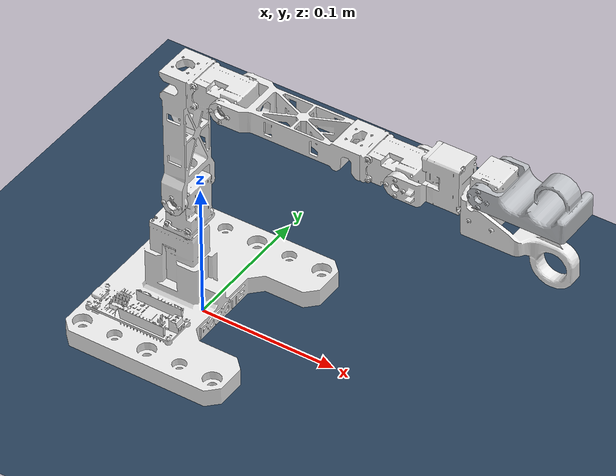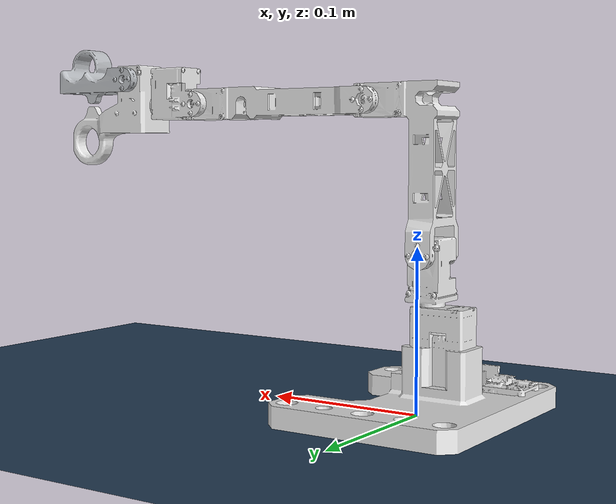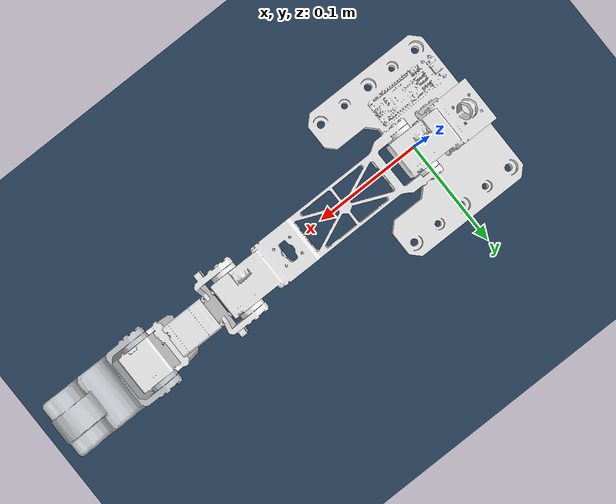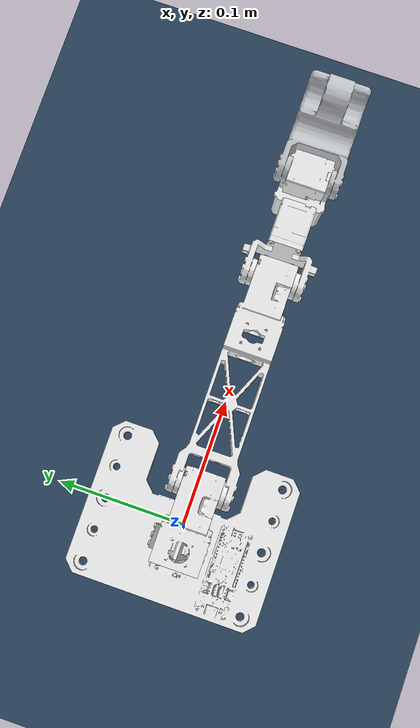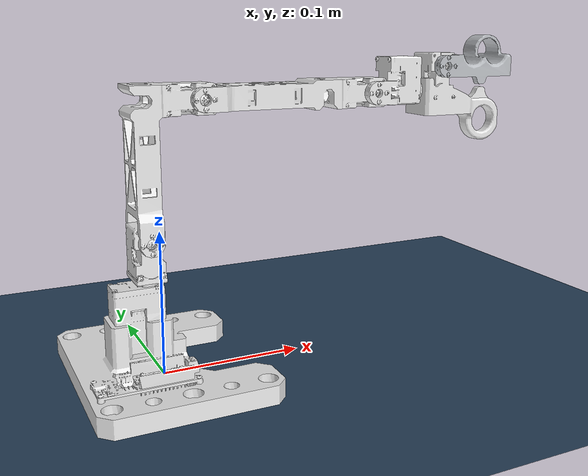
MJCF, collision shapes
<mujoco model="omx leader scene">
  <include file="omx_l.xml"/>

  <statistic center="0.3 0 0.4" extent="1"/>

  <visual>
    <headlight diffuse="0.6 0.6 0.6" ambient="0.3 0.3 0.3" specular="0 0 0"/>
    <rgba haze="0.15 0.25 0.35 1"/>
    <global azimuth="120" elevation="-20"/>
  </visual>

  <asset>
    <texture type="skybox" builtin="gradient" rgb1="0.3 0.5 0.7" rgb2="0 0 0" width="512" height="3072"/>
    <texture type="2d" name="groundplane" builtin="checker" mark="edge" rgb1="0.2 0.3 0.4" rgb2="0.1 0.2 0.3"
      markrgb="0.8 0.8 0.8" width="300" height="300"/>
    <material name="groundplane" texture="groundplane" texuniform="true" texrepeat="5 5" reflectance="0.2"/>
  </asset>

  <worldbody>
    <light pos="0 0 1.5" dir="0 0 -1" directional="true"/>
    <geom name="floor" size="0 0 0.05" type="plane" material="groundplane"/>
  </worldbody>
</mujoco>

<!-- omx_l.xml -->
<mujoco model="omx_l">
  <compiler angle="radian" meshdir="../../"/>
  <!-- Passive leader model generated from omx_l_arm.urdf.xacro. No actuator/controller tuning is implied. -->
  <asset>
    <mesh name="link0_black_electronics" content_type="model/obj" file="meshes/omx_l/visual/link0_black_electronics.obj"/>
    <mesh name="link0_black_fasteners" content_type="model/obj" file="meshes/omx_l/visual/link0_black_fasteners.obj"/>
    <mesh name="link0_blue_pcb" content_type="model/obj" file="meshes/omx_l/visual/link0_blue_pcb.obj"/>
    <mesh name="link0_ceramic" content_type="model/obj" file="meshes/omx_l/visual/link0_ceramic.obj"/>
    <mesh name="link0_gold_contacts" content_type="model/obj" file="meshes/omx_l/visual/link0_gold_contacts.obj"/>
    <mesh name="link0_green_terminal" content_type="model/obj" file="meshes/omx_l/visual/link0_green_terminal.obj"/>
    <mesh name="link0_ivory_connectors" content_type="model/obj" file="meshes/omx_l/visual/link0_ivory_connectors.obj"/>
    <mesh name="link0_motor_housing" content_type="model/obj" file="meshes/omx_l/visual/link0_motor_housing.obj"/>
    <mesh name="link0_nickel_tin" content_type="model/obj" file="meshes/omx_l/visual/link0_nickel_tin.obj"/>
    <mesh name="link0_openrb_bottom" content_type="model/obj" file="meshes/omx_l/visual/link0_openrb_bottom.obj"/>
    <mesh name="link0_openrb_top" content_type="model/obj" file="meshes/omx_l/visual/link0_openrb_top.obj"/>
    <mesh name="link0_printed_charcoal" content_type="model/obj" file="meshes/omx_l/visual/link0_printed_charcoal.obj"/>
    <mesh name="link0_steel_hardware" content_type="model/obj" file="meshes/omx_l/visual/link0_steel_hardware.obj"/>
    <mesh name="link0_unpowered_led" content_type="model/obj" file="meshes/omx_l/visual/link0_unpowered_led.obj"/>
    <mesh name="link0_white_led_diffuser" content_type="model/obj" file="meshes/omx_l/visual/link0_white_led_diffuser.obj"/>
    <mesh name="leader_01_base_roll" content_type="model/stl" file="meshes/omx_l/leader_01_base_roll.stl" scale="0.001 0.001 0.001"/>
    <mesh name="link1_black_electronics" content_type="model/obj" file="meshes/omx_l/visual/link1_black_electronics.obj"/>
    <mesh name="link1_black_fasteners" content_type="model/obj" file="meshes/omx_l/visual/link1_black_fasteners.obj"/>
    <mesh name="link1_motor_housing" content_type="model/obj" file="meshes/omx_l/visual/link1_motor_housing.obj"/>
    <mesh name="link1_printed_charcoal" content_type="model/obj" file="meshes/omx_l/visual/link1_printed_charcoal.obj"/>
    <mesh name="link1_steel_hardware" content_type="model/obj" file="meshes/omx_l/visual/link1_steel_hardware.obj"/>
    <mesh name="link1_white_led_diffuser" content_type="model/obj" file="meshes/omx_l/visual/link1_white_led_diffuser.obj"/>
    <mesh name="leader_02_base_tilt_revised" content_type="model/stl" file="meshes/omx_l/leader_02_base_tilt_revised.stl" scale="0.001 0.001 0.001"/>
    <mesh name="link2_black_electronics" content_type="model/obj" file="meshes/omx_l/visual/link2_black_electronics.obj"/>
    <mesh name="link2_black_fasteners" content_type="model/obj" file="meshes/omx_l/visual/link2_black_fasteners.obj"/>
    <mesh name="link2_motor_housing" content_type="model/obj" file="meshes/omx_l/visual/link2_motor_housing.obj"/>
    <mesh name="link2_printed_charcoal" content_type="model/obj" file="meshes/omx_l/visual/link2_printed_charcoal.obj"/>
    <mesh name="link2_steel_hardware" content_type="model/obj" file="meshes/omx_l/visual/link2_steel_hardware.obj"/>
    <mesh name="link2_white_led_diffuser" content_type="model/obj" file="meshes/omx_l/visual/link2_white_led_diffuser.obj"/>
    <mesh name="leader_03_middle_vertical" content_type="model/stl" file="meshes/omx_l/leader_03_middle_vertical.stl" scale="0.001 0.001 0.001"/>
    <mesh name="link3_black_electronics" content_type="model/obj" file="meshes/omx_l/visual/link3_black_electronics.obj"/>
    <mesh name="link3_black_fasteners" content_type="model/obj" file="meshes/omx_l/visual/link3_black_fasteners.obj"/>
    <mesh name="link3_motor_housing" content_type="model/obj" file="meshes/omx_l/visual/link3_motor_housing.obj"/>
    <mesh name="link3_printed_charcoal" content_type="model/obj" file="meshes/omx_l/visual/link3_printed_charcoal.obj"/>
    <mesh name="link3_steel_hardware" content_type="model/obj" file="meshes/omx_l/visual/link3_steel_hardware.obj"/>
    <mesh name="link3_white_led_diffuser" content_type="model/obj" file="meshes/omx_l/visual/link3_white_led_diffuser.obj"/>
    <mesh name="leader_04_middle_horizontal" content_type="model/stl" file="meshes/omx_l/leader_04_middle_horizontal.stl" scale="0.001 0.001 0.001"/>
    <mesh name="link4_black_electronics" content_type="model/obj" file="meshes/omx_l/visual/link4_black_electronics.obj"/>
    <mesh name="link4_black_fasteners" content_type="model/obj" file="meshes/omx_l/visual/link4_black_fasteners.obj"/>
    <mesh name="link4_motor_housing" content_type="model/obj" file="meshes/omx_l/visual/link4_motor_housing.obj"/>
    <mesh name="link4_printed_charcoal" content_type="model/obj" file="meshes/omx_l/visual/link4_printed_charcoal.obj"/>
    <mesh name="link4_steel_hardware" content_type="model/obj" file="meshes/omx_l/visual/link4_steel_hardware.obj"/>
    <mesh name="link4_white_led_diffuser" content_type="model/obj" file="meshes/omx_l/visual/link4_white_led_diffuser.obj"/>
    <mesh name="leader_05_tip_roll" content_type="model/stl" file="meshes/omx_l/leader_05_tip_roll.stl" scale="0.001 0.001 0.001"/>
    <mesh name="link5_black_electronics" content_type="model/obj" file="meshes/omx_l/visual/link5_black_electronics.obj"/>
    <mesh name="link5_black_fasteners" content_type="model/obj" file="meshes/omx_l/visual/link5_black_fasteners.obj"/>
    <mesh name="link5_motor_housing" content_type="model/obj" file="meshes/omx_l/visual/link5_motor_housing.obj"/>
    <mesh name="link5_printed_charcoal" content_type="model/obj" file="meshes/omx_l/visual/link5_printed_charcoal.obj"/>
    <mesh name="link5_steel_hardware" content_type="model/obj" file="meshes/omx_l/visual/link5_steel_hardware.obj"/>
    <mesh name="link5_white_led_diffuser" content_type="model/obj" file="meshes/omx_l/visual/link5_white_led_diffuser.obj"/>
    <mesh name="leader_06_tip_pan_revised" content_type="model/stl" file="meshes/omx_l/leader_06_tip_pan_revised.stl" scale="0.001 0.001 0.001"/>
    <mesh name="link6_black_fasteners" content_type="model/obj" file="meshes/omx_l/visual/link6_black_fasteners.obj"/>
    <mesh name="link6_motor_housing" content_type="model/obj" file="meshes/omx_l/visual/link6_motor_housing.obj"/>
    <mesh name="link6_printed_charcoal" content_type="model/obj" file="meshes/omx_l/visual/link6_printed_charcoal.obj"/>
    <mesh name="link6_steel_hardware" content_type="model/obj" file="meshes/omx_l/visual/link6_steel_hardware.obj"/>
    <mesh name="leader_07_tip_grip" content_type="model/stl" file="meshes/omx_l/leader_07_tip_grip.stl" scale="0.001 0.001 0.001"/>
    <material name="omx_printed_charcoal" rgba="0.259833 0.269015 0.277847 1.000000" specular="0.2500" shininess="0.2280"/>
    <material name="omx_ceramic" rgba="0.634878 0.538065 0.411645 1.000000" specular="0.2500" shininess="0.3240"/>
    <material name="omx_black_electronics" rgba="0.110702 0.131804 0.150005 1.000000" specular="0.2500" shininess="0.3480"/>
    <material name="omx_nickel_tin" rgba="0.749388 0.766765 0.790731 1.000000" specular="0.7000" shininess="0.4500"/>
    <material name="omx_gold_contacts" rgba="0.786014 0.641088 0.352474 1.000000" specular="0.7000" shininess="0.4560"/>
    <material name="omx_ivory_connectors" rgba="0.886408 0.896443 0.870034 1.000000" specular="0.2500" shininess="0.3720"/>
    <material name="omx_unpowered_led" rgba="0.820532 0.838187 0.766765 1.000000" specular="0.2500" shininess="0.4500"/>
    <material name="omx_green_terminal" rgba="0.229735 0.575048 0.383458 1.000000" specular="0.2500" shininess="0.3600"/>
    <texture name="omx_openrb_top" type="2d" file="../../meshes/omx_l/visual/textures/openrb_top.png"/>
    <material name="omx_openrb_top" rgba="1.000000 1.000000 1.000000 1.000000" specular="0.7000" shininess="0.0000" texture="omx_openrb_top"/>
    <texture name="omx_openrb_bottom" type="2d" file="../../meshes/omx_l/visual/textures/openrb_bottom.png"/>
    <material name="omx_openrb_bottom" rgba="1.000000 1.000000 1.000000 1.000000" specular="0.7000" shininess="0.0000" texture="omx_openrb_bottom"/>
    <material name="omx_blue_pcb" rgba="0.084945 0.302554 0.484529 1.000000" specular="0.2725" shininess="0.4140"/>
    <material name="omx_steel_hardware" rgba="0.736647 0.749388 0.766765 1.000000" specular="0.7000" shininess="0.4320"/>
    <material name="omx_motor_housing" rgba="0.166186 0.166186 0.194353 1.000000" specular="0.2500" shininess="0.4080"/>
    <material name="omx_white_led_diffuser" rgba="0.916080 0.916080 0.916080 1.000000" specular="0.2500" shininess="0.3000"/>
    <material name="omx_black_fasteners" rgba="0.131804 0.150005 0.166186 1.000000" specular="0.6100" shininess="0.4080"/>
  </asset>
  <worldbody>
    <body name="link0">
      <inertial pos="-0.0123863 -0.00544724 0.0174451" quat="0.546251 0.516036 -0.47646 0.456402" mass="0.145108" diaginertia="0.000321438 0.000262113 0.00014746"/>
      <geom name="link0_black_electronics" quat="1 0 0 0" type="mesh" contype="0" conaffinity="0" group="2" density="0" mesh="link0_black_electronics" material="omx_black_electronics"/>
      <geom name="link0_black_fasteners" pos="0 0 0" quat="1 0 0 0" type="mesh" contype="0" conaffinity="0" group="2" density="0" mesh="link0_black_fasteners" material="omx_black_fasteners"/>
      <geom name="link0_blue_pcb" pos="0 0 0" quat="1 0 0 0" type="mesh" contype="0" conaffinity="0" group="2" density="0" mesh="link0_blue_pcb" material="omx_blue_pcb"/>
      <geom name="link0_ceramic" pos="0 0 0" quat="1 0 0 0" type="mesh" contype="0" conaffinity="0" group="2" density="0" mesh="link0_ceramic" material="omx_ceramic"/>
      <geom name="link0_gold_contacts" pos="0 0 0" quat="1 0 0 0" type="mesh" contype="0" conaffinity="0" group="2" density="0" mesh="link0_gold_contacts" material="omx_gold_contacts"/>
      <geom name="link0_green_terminal" type="mesh" contype="0" conaffinity="0" group="2" density="0" mesh="link0_green_terminal" material="omx_green_terminal"/>
      <geom name="link0_ivory_connectors" quat="1 0 0 0" type="mesh" contype="0" conaffinity="0" group="2" density="0" mesh="link0_ivory_connectors" material="omx_ivory_connectors"/>
      <geom name="link0_motor_housing" pos="0 0 0" quat="1 0 0 0" type="mesh" contype="0" conaffinity="0" group="2" density="0" mesh="link0_motor_housing" material="omx_motor_housing"/>
      <geom name="link0_nickel_tin" pos="0 0 0" quat="1 0 0 0" type="mesh" contype="0" conaffinity="0" group="2" density="0" mesh="link0_nickel_tin" material="omx_nickel_tin"/>
      <geom name="link0_openrb_bottom" pos="0 0 0" quat="1 0 0 0" type="mesh" contype="0" conaffinity="0" group="2" density="0" mesh="link0_openrb_bottom" material="omx_openrb_bottom"/>
      <geom name="link0_openrb_top" pos="0 0 0" quat="1 0 0 0" type="mesh" contype="0" conaffinity="0" group="2" density="0" mesh="link0_openrb_top" material="omx_openrb_top"/>
      <geom name="link0_printed_charcoal" quat="1 0 0 0" type="mesh" contype="0" conaffinity="0" group="2" density="0" mesh="link0_printed_charcoal" material="omx_printed_charcoal"/>
      <geom name="link0_steel_hardware" quat="1 0 0 0" type="mesh" contype="0" conaffinity="0" group="2" density="0" mesh="link0_steel_hardware" material="omx_steel_hardware"/>
      <geom name="link0_unpowered_led" pos="0 0 0" quat="1 0 0 0" type="mesh" contype="0" conaffinity="0" group="2" density="0" mesh="link0_unpowered_led" material="omx_unpowered_led"/>
      <geom name="link0_white_led_diffuser" quat="1 0 0 0" type="mesh" contype="0" conaffinity="0" group="2" density="0" mesh="link0_white_led_diffuser" material="omx_white_led_diffuser"/>
      <geom name="link0_collision" quat="1 0 0 0" type="mesh" rgba="0.91608 0.91608 0.91608 1" mesh="leader_01_base_roll" group="3"/>
      <body name="link1" pos="-0.0095 0 0.0545">
        <inertial pos="2.83504e-05 0.000275113 0.0312809" quat="0.999997 -0.00216306 -0.000542784 -0.000164833" mass="0.025271" diaginertia="4.40774e-06 4.21813e-06 1.868e-06"/>
        <joint name="joint1" range="-6.28319 6.28319" actuatorfrcrange="-1000 1000" damping="0.05"/>
        <geom name="link1_black_electronics" quat="1 0 0 0" type="mesh" contype="0" conaffinity="0" group="2" density="0" mesh="link1_black_electronics" material="omx_black_electronics"/>
        <geom name="link1_black_fasteners" type="mesh" contype="0" conaffinity="0" group="2" density="0" mesh="link1_black_fasteners" material="omx_black_fasteners"/>
        <geom name="link1_motor_housing" type="mesh" contype="0" conaffinity="0" group="2" density="0" mesh="link1_motor_housing" material="omx_motor_housing"/>
        <geom name="link1_printed_charcoal" quat="1 0 0 0" type="mesh" contype="0" conaffinity="0" group="2" density="0" mesh="link1_printed_charcoal" material="omx_printed_charcoal"/>
        <geom name="link1_steel_hardware" quat="1 0 0 0" type="mesh" contype="0" conaffinity="0" group="2" density="0" mesh="link1_steel_hardware" material="omx_steel_hardware"/>
        <geom name="link1_white_led_diffuser" pos="0 0 0" quat="1 0 0 0" type="mesh" contype="0" conaffinity="0" group="2" density="0" mesh="link1_white_led_diffuser" material="omx_white_led_diffuser"/>
        <geom name="link1_collision" type="mesh" rgba="0.91608 0.91608 0.91608 1" mesh="leader_02_base_tilt_revised" group="3"/>
        <body name="link2" pos="0 0 0.042">
          <inertial pos="0.0142492 0.000172411 0.0687606" quat="0.693296 0.108195 0.107569 0.704318" mass="0.0477062" diaginertia="6.58166e-05 6.2121e-05 1.19626e-05"/>
          <joint name="joint2" range="-6.28319 6.28319" actuatorfrcrange="-1000 1000" damping="0.1" axis="0 1 0"/>
          <geom name="link2_black_electronics" pos="0 0 0" quat="1 0 0 0" type="mesh" contype="0" conaffinity="0" group="2" density="0" mesh="link2_black_electronics" material="omx_black_electronics"/>
          <geom name="link2_black_fasteners" quat="1 0 0 0" type="mesh" contype="0" conaffinity="0" group="2" density="0" mesh="link2_black_fasteners" material="omx_black_fasteners"/>
          <geom name="link2_motor_housing" pos="0 0 0" quat="1 0 0 0" type="mesh" contype="0" conaffinity="0" group="2" density="0" mesh="link2_motor_housing" material="omx_motor_housing"/>
          <geom name="link2_printed_charcoal" type="mesh" contype="0" conaffinity="0" group="2" density="0" mesh="link2_printed_charcoal" material="omx_printed_charcoal"/>
          <geom name="link2_steel_hardware" quat="1 0 0 0" type="mesh" contype="0" conaffinity="0" group="2" density="0" mesh="link2_steel_hardware" material="omx_steel_hardware"/>
          <geom name="link2_white_led_diffuser" type="mesh" contype="0" conaffinity="0" group="2" density="0" mesh="link2_white_led_diffuser" material="omx_white_led_diffuser"/>
          <geom name="link2_collision" pos="0 0 0" quat="1 0 0 0" type="mesh" rgba="0.91608 0.91608 0.91608 1" mesh="leader_03_middle_vertical" group="3"/>
          <body name="link3" pos="0.0375 0 0.09">
            <inertial pos="0.0828274 0.000172415 0.000182392" quat="-0.000316965 0.706928 0.000801832 0.707285" mass="0.0477062" diaginertia="9.72316e-05 9.4567e-05 5.6039e-06"/>
            <joint name="joint3" range="-6.28319 6.28319" actuatorfrcrange="-1000 1000" damping="0.1" axis="0 1 0"/>
            <geom name="link3_black_electronics" pos="0 0 0" quat="1 0 0 0" type="mesh" contype="0" conaffinity="0" group="2" density="0" mesh="link3_black_electronics" material="omx_black_electronics"/>
            <geom name="link3_black_fasteners" pos="0 0 0" quat="1 0 0 0" type="mesh" contype="0" conaffinity="0" group="2" density="0" mesh="link3_black_fasteners" material="omx_black_fasteners"/>
            <geom name="link3_motor_housing" pos="0 0 0" quat="1 0 0 0" type="mesh" contype="0" conaffinity="0" group="2" density="0" mesh="link3_motor_housing" material="omx_motor_housing"/>
            <geom name="link3_printed_charcoal" pos="0 0 0" quat="1 0 0 0" type="mesh" contype="0" conaffinity="0" group="2" density="0" mesh="link3_printed_charcoal" material="omx_printed_charcoal"/>
            <geom name="link3_steel_hardware" pos="0 0 0" quat="1 0 0 0" type="mesh" contype="0" conaffinity="0" group="2" density="0" mesh="link3_steel_hardware" material="omx_steel_hardware"/>
            <geom name="link3_white_led_diffuser" type="mesh" contype="0" conaffinity="0" group="2" density="0" mesh="link3_white_led_diffuser" material="omx_white_led_diffuser"/>
            <geom name="link3_collision" pos="0 0 0" quat="1 0 0 0" type="mesh" rgba="0.91608 0.91608 0.91608 1" mesh="leader_04_middle_horizontal" group="3"/>
            <body name="link4" pos="0.1275 0 0">
              <inertial pos="0.0222628 6.54337e-05 0.00588644" quat="0.610774 0.372714 0.382467 0.584601" mass="0.0304318" diaginertia="7.46512e-06 7.23252e-06 4.78358e-06"/>
              <joint name="joint4" range="-6.28319 6.28319" actuatorfrcrange="-1000 1000" damping="0.1" axis="0 1 0"/>
              <geom name="link4_black_electronics" quat="1 0 0 0" type="mesh" contype="0" conaffinity="0" group="2" density="0" mesh="link4_black_electronics" material="omx_black_electronics"/>
              <geom name="link4_black_fasteners" quat="1 0 0 0" type="mesh" contype="0" conaffinity="0" group="2" density="0" mesh="link4_black_fasteners" material="omx_black_fasteners"/>
              <geom name="link4_motor_housing" quat="1 0 0 0" type="mesh" contype="0" conaffinity="0" group="2" density="0" mesh="link4_motor_housing" material="omx_motor_housing"/>
              <geom name="link4_printed_charcoal" quat="1 0 0 0" type="mesh" contype="0" conaffinity="0" group="2" density="0" mesh="link4_printed_charcoal" material="omx_printed_charcoal"/>
              <geom name="link4_steel_hardware" quat="1 0 0 0" type="mesh" contype="0" conaffinity="0" group="2" density="0" mesh="link4_steel_hardware" material="omx_steel_hardware"/>
              <geom name="link4_white_led_diffuser" quat="1 0 0 0" type="mesh" contype="0" conaffinity="0" group="2" density="0" mesh="link4_white_led_diffuser" material="omx_white_led_diffuser"/>
              <geom name="link4_collision" quat="1 0 0 0" type="mesh" rgba="0.91608 0.91608 0.91608 1" mesh="leader_05_tip_roll" group="3"/>
              <body name="link5" pos="0.0287 0 0">
                <inertial pos="0.0361242 0.000280933 2.35744e-05" quat="0.334178 0.621672 0.630074 0.323814" mass="0.0396297" diaginertia="2.16991e-05 1.92925e-05 6.42507e-06"/>
                <joint name="joint5" range="-6.28319 6.28319" actuatorfrcrange="-1000 1000" damping="0.1" axis="1 0 0"/>
                <geom name="link5_black_electronics" quat="1 0 0 0" type="mesh" contype="0" conaffinity="0" group="2" density="0" mesh="link5_black_electronics" material="omx_black_electronics"/>
                <geom name="link5_black_fasteners" quat="1 0 0 0" type="mesh" contype="0" conaffinity="0" group="2" density="0" mesh="link5_black_fasteners" material="omx_black_fasteners"/>
                <geom name="link5_motor_housing" quat="1 0 0 0" type="mesh" contype="0" conaffinity="0" group="2" density="0" mesh="link5_motor_housing" material="omx_motor_housing"/>
                <geom name="link5_printed_charcoal" pos="0 0 0" quat="1 0 0 0" type="mesh" contype="0" conaffinity="0" group="2" density="0" mesh="link5_printed_charcoal" material="omx_printed_charcoal"/>
                <geom name="link5_steel_hardware" quat="1 0 0 0" type="mesh" contype="0" conaffinity="0" group="2" density="0" mesh="link5_steel_hardware" material="omx_steel_hardware"/>
                <geom name="link5_white_led_diffuser" pos="0 0 0" quat="1 0 0 0" type="mesh" contype="0" conaffinity="0" group="2" density="0" mesh="link5_white_led_diffuser" material="omx_white_led_diffuser"/>
                <geom name="link5_collision" pos="0 0 0" quat="1 0 0 0" type="mesh" rgba="0.91608 0.91608 0.91608 1" mesh="leader_06_tip_pan_revised" group="3"/>
                <body name="link6" pos="0.0298 0 0.0175">
                  <inertial pos="0.028486 3.99103e-05 0.000349951" quat="0.00185238 0.695527 -0.0035435 0.718489" mass="0.0196115" diaginertia="1.10325e-05 9.04111e-06 3.3363e-06"/>
                  <joint name="gripper_joint_1" range="-6.28319 6.28319" actuatorfrcrange="-1000 1000" damping="0.1" axis="0 1 0"/>
                  <geom name="link6_black_fasteners" quat="1 0 0 0" type="mesh" contype="0" conaffinity="0" group="2" density="0" mesh="link6_black_fasteners" material="omx_black_fasteners"/>
                  <geom name="link6_motor_housing" quat="1 0 0 0" type="mesh" contype="0" conaffinity="0" group="2" density="0" mesh="link6_motor_housing" material="omx_motor_housing"/>
                  <geom name="link6_printed_charcoal" pos="0 0 0" quat="1 0 0 0" type="mesh" contype="0" conaffinity="0" group="2" density="0" mesh="link6_printed_charcoal" material="omx_printed_charcoal"/>
                  <geom name="link6_steel_hardware" quat="1 0 0 0" type="mesh" contype="0" conaffinity="0" group="2" density="0" mesh="link6_steel_hardware" material="omx_steel_hardware"/>
                  <geom name="link6_collision" pos="0 0 0" quat="1 0 0 0" type="mesh" rgba="0.736647 0.749388 0.766765 1" mesh="leader_07_tip_grip" group="3"/>
                </body>
              </body>
            </body>
          </body>
        </body>
      </body>
    </body>
  </worldbody>
</mujoco>
